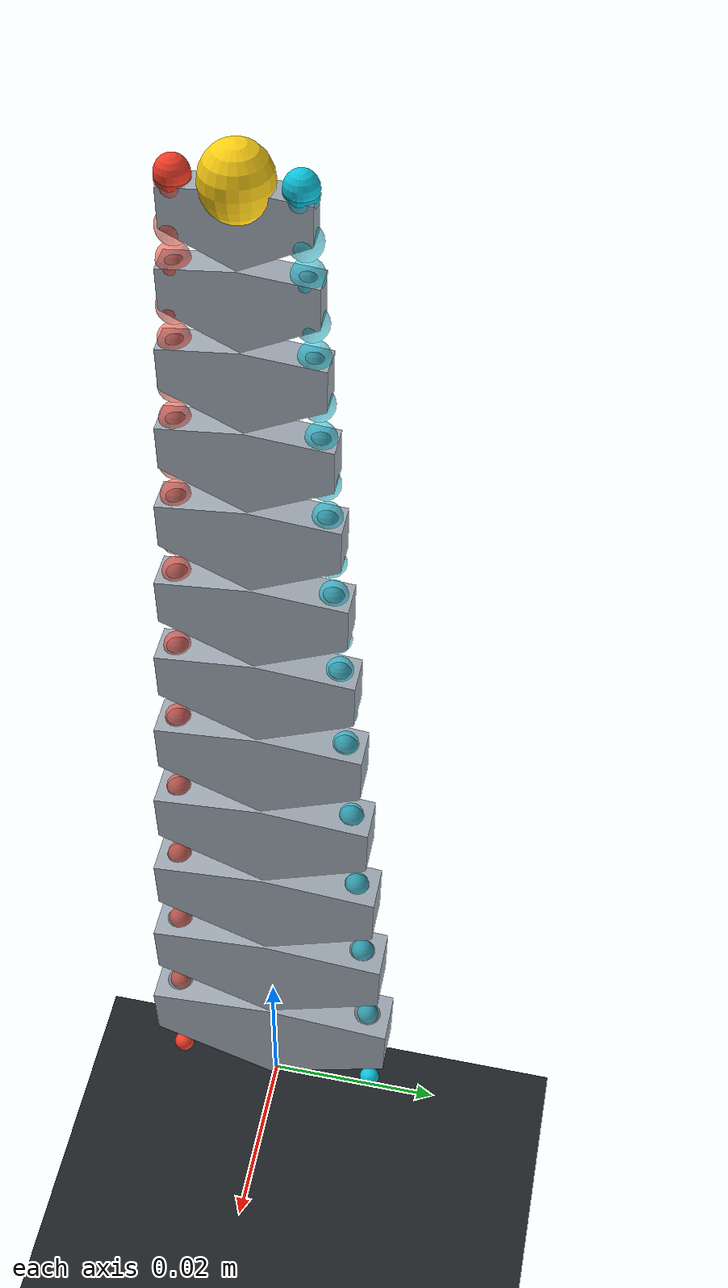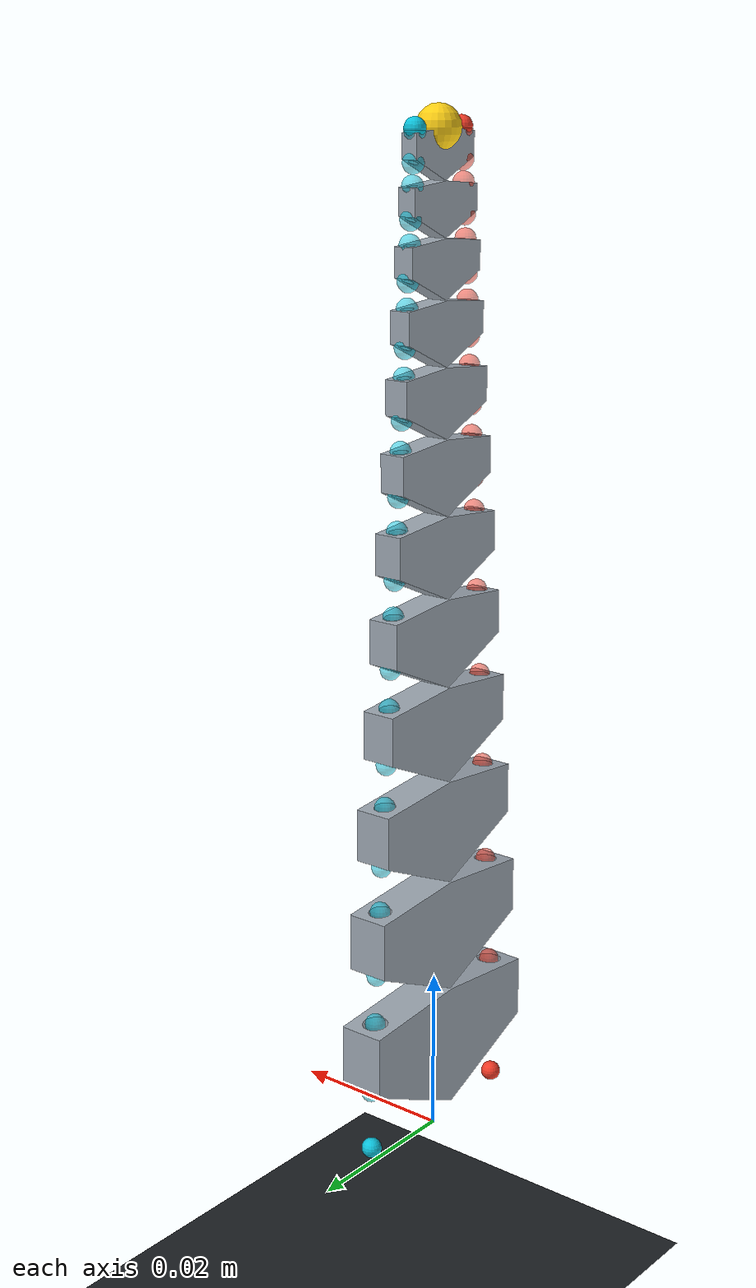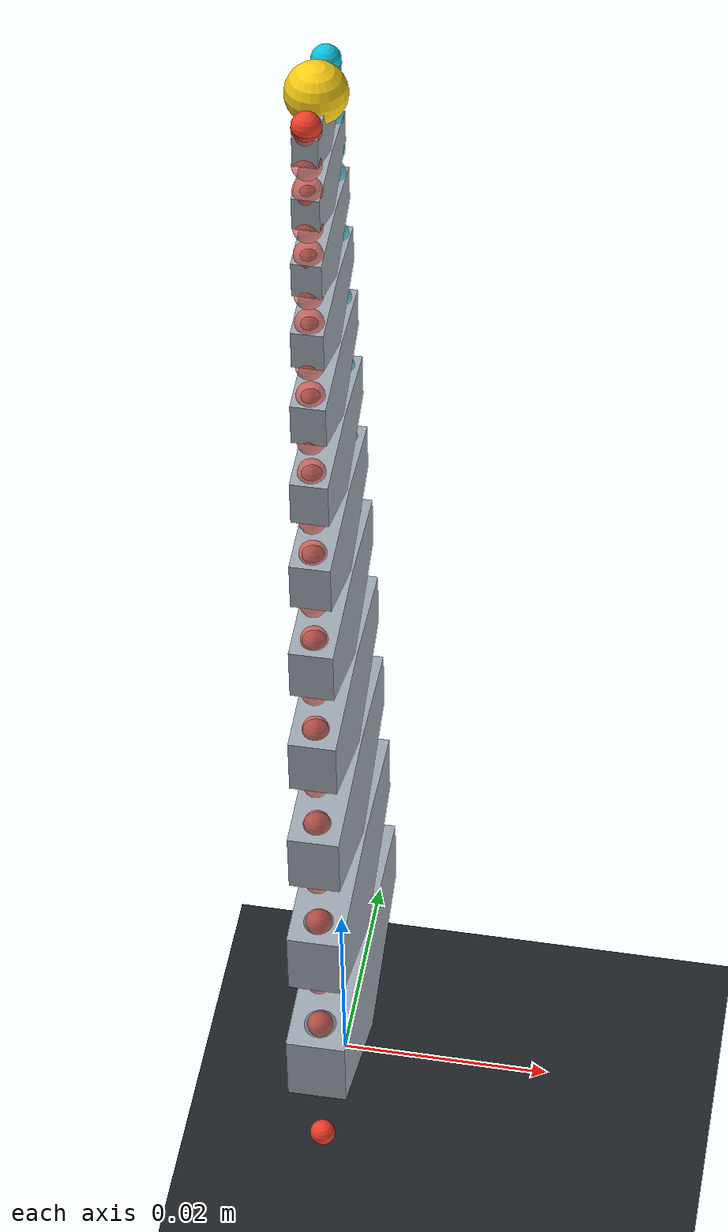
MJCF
<mujoco model="open_spirob_mujocable_mu_0p015">
  <compiler angle="radian" autolimits="true" meshdir="../assets/open_spirob" />
  <size nuser_site="1" />
  <option timestep="0.0002" gravity="0 0 0" integrator="implicitfast" />
  <statistic center="0 0 0.075" extent="0.14" />
  <extension>
    <plugin plugin="mujoco.cable.unilateral">
      <instance name="positive_cable">
        <config key="route_mode" value="surface" />
        <config key="route_tendon" value="positive_seed" />
        <config key="site_role_user_index" value="0" />
        <config key="home_length" value="auto_initial" />
        <config key="stiffness" value="180" />
        <config key="damping" value="0.08" />
        <config key="slack" value="0.0001" />
        <config key="pretension_offset" value="-0.025" />
        <config key="max_tension" value="7" />
        <config key="ctrl_mode" value="target_contraction" />
        <config key="control_timeconstant" value="0.04" />
        <config key="max_contraction_rate" value="0.040" />
        <config key="taut_transition" value="0.00015" />
        <config key="taut_hysteresis" value="0.00005" />
        <config key="guide_friction_mu" value="0.015" />
        <config key="capstan_direction" value="forward" />
        <config key="visual_width" value="2.2" />
        <config key="visual_smoothing_timeconstant" value="0.02" />
      </instance>
      <instance name="negative_cable">
        <config key="route_mode" value="surface" />
        <config key="route_tendon" value="negative_seed" />
        <config key="site_role_user_index" value="0" />
        <config key="home_length" value="auto_initial" />
        <config key="stiffness" value="180" />
        <config key="damping" value="0.08" />
        <config key="slack" value="0.0001" />
        <config key="pretension_offset" value="-0.025" />
        <config key="max_tension" value="7" />
        <config key="ctrl_mode" value="target_contraction" />
        <config key="control_timeconstant" value="0.04" />
        <config key="max_contraction_rate" value="0.040" />
        <config key="taut_transition" value="0.00015" />
        <config key="taut_hysteresis" value="0.00005" />
        <config key="guide_friction_mu" value="0.015" />
        <config key="capstan_direction" value="forward" />
        <config key="visual_width" value="2.2" />
        <config key="visual_smoothing_timeconstant" value="0.02" />
      </instance>
    </plugin>
  </extension>
  <asset>
    <mesh name="unit_1" file="spirob_unit_with_holes.stl" scale="0.001000000 0.001000000 0.001000000" />
    <mesh name="unit_2" file="spirob_unit_with_holes.stl" scale="0.000911774 0.000911774 0.000911774" />
    <mesh name="unit_3" file="spirob_unit_with_holes.stl" scale="0.000831332 0.000831332 0.000831332" />
    <mesh name="unit_4" file="spirob_unit_with_holes.stl" scale="0.000757987 0.000757987 0.000757987" />
    <mesh name="unit_5" file="spirob_unit_with_holes.stl" scale="0.000691113 0.000691113 0.000691113" />
    <mesh name="unit_6" file="spirob_unit_with_holes.stl" scale="0.000630139 0.000630139 0.000630139" />
    <mesh name="unit_7" file="spirob_unit_with_holes.stl" scale="0.000574545 0.000574545 0.000574545" />
    <mesh name="unit_8" file="spirob_unit_with_holes.stl" scale="0.000523855 0.000523855 0.000523855" />
    <mesh name="unit_9" file="spirob_unit_with_holes.stl" scale="0.000477638 0.000477638 0.000477638" />
    <mesh name="unit_10" file="spirob_unit_with_holes.stl" scale="0.000435498 0.000435498 0.000435498" />
    <mesh name="unit_11" file="spirob_unit_with_holes.stl" scale="0.000397076 0.000397076 0.000397076" />
    <mesh name="unit_12" file="spirob_unit_with_holes.stl" scale="0.000362043 0.000362043 0.000362043" />
    <material name="body_material" rgba="0.62 0.66 0.70 1" />
    <texture name="grid" type="2d" builtin="checker" rgb1=".16 .18 .20" rgb2=".08 .09 .10" width="512" height="512" />
    <material name="floor_material" texture="grid" texrepeat="4 4" />
  </asset>
  <visual>
    <headlight ambient="0.25 0.25 0.25" diffuse="0.8 0.8 0.8" />
    <global offwidth="1280" offheight="720" />
  </visual>
  <default>
    <joint type="hinge" axis="1 0 0" limited="true" range="-0.70 0.70" damping="0.0015" stiffness="0.0015" />
    <geom type="mesh" material="body_material" density="350" contype="0" conaffinity="0" />
    <site size="0.0012" />
  </default>
  <worldbody>
    <light pos="-0.25 -0.35 0.45" dir="0.3 0.4 -1" />
    <camera name="overview" pos="0.15 -0.21 0.155" xyaxes="0.81 0.58 0 -0.23 0.32 0.92" />
    <geom name="floor" type="plane" pos="0 0 -0.025" size="0.14 0.14 0.01" material="floor_material" />
    <site name="positive_base_anchor" user="1" pos="0 0.011957987 0.002" rgba="0.05 0.78 0.88 1" />
    <site name="negative_base_anchor" user="1" pos="0 -0.011957987 0.002" rgba="0.96 0.24 0.16 1" />
    <body name="unit_1_body" pos="0 0 0.004">
      <geom mesh="unit_1" name="unit_1_geom" contype="1" conaffinity="1" friction="0.8 0.02 0.005" solref="0.006 1" solimp="0.95 0.995 0.001" />
      <site name="positive_1_1" user="3" pos="0 0.011957987 0.005518307" rgba="0.05 0.78 0.88 0.55" />
      <site name="positive_1_2" user="3" pos="0 0.011214213 0.014142487" rgba="0.05 0.78 0.88 0.55" />
      <site name="negative_1_1" user="3" pos="0 -0.011957987 0.005518307" rgba="0.96 0.24 0.16 0.55" />
      <site name="negative_1_2" user="3" pos="0 -0.011214213 0.014142487" rgba="0.96 0.24 0.16 0.55" />
      <body name="unit_2_body" pos="0 0 0.015168563">
        <joint name="joint_1" />
        <geom mesh="unit_2" name="unit_2_geom" contype="1" conaffinity="1" friction="0.8 0.02 0.005" solref="0.006 1" solimp="0.95 0.995 0.001" />
        <site name="positive_2_1" user="3" pos="0 0.010902985 0.005031450" rgba="0.05 0.78 0.88 0.55" />
        <site name="positive_2_2" user="3" pos="0 0.010224831 0.012894756" rgba="0.05 0.78 0.88 0.55" />
        <site name="negative_2_1" user="3" pos="0 -0.010902985 0.005031450" rgba="0.96 0.24 0.16 0.55" />
        <site name="negative_2_2" user="3" pos="0 -0.010224831 0.012894756" rgba="0.96 0.24 0.16 0.55" />
        <body name="unit_3_body" pos="0 0 0.013830305">
          <joint name="joint_2" />
          <geom mesh="unit_3" name="unit_3_geom" contype="1" conaffinity="1" friction="0.8 0.02 0.005" solref="0.006 1" solimp="0.95 0.995 0.001" />
          <site name="positive_3_1" user="3" pos="0 0.009941061 0.004587547" rgba="0.05 0.78 0.88 0.55" />
          <site name="positive_3_2" user="3" pos="0 0.009322738 0.011757107" rgba="0.05 0.78 0.88 0.55" />
          <site name="negative_3_1" user="3" pos="0 -0.009941061 0.004587547" rgba="0.96 0.24 0.16 0.55" />
          <site name="negative_3_2" user="3" pos="0 -0.009322738 0.011757107" rgba="0.96 0.24 0.16 0.55" />
          <body name="unit_4_body" pos="0 0 0.012610117">
            <joint name="joint_3" />
            <geom mesh="unit_4" name="unit_4_geom" contype="1" conaffinity="1" friction="0.8 0.02 0.005" solref="0.006 1" solimp="0.95 0.995 0.001" />
            <site name="positive_4_1" user="3" pos="0 0.009064004 0.004182807" rgba="0.05 0.78 0.88 0.55" />
            <site name="positive_4_2" user="3" pos="0 0.008500233 0.010719828" rgba="0.05 0.78 0.88 0.55" />
            <site name="negative_4_1" user="3" pos="0 -0.009064004 0.004182807" rgba="0.96 0.24 0.16 0.55" />
            <site name="negative_4_2" user="3" pos="0 -0.008500233 0.010719828" rgba="0.96 0.24 0.16 0.55" />
            <body name="unit_5_body" pos="0 0 0.011497580">
              <joint name="joint_4" />
              <geom mesh="unit_5" name="unit_5_geom" contype="1" conaffinity="1" friction="0.8 0.02 0.005" solref="0.006 1" solimp="0.95 0.995 0.001" />
              <site name="positive_5_1" user="3" pos="0 0.008264325 0.003813776" rgba="0.05 0.78 0.88 0.55" />
              <site name="positive_5_2" user="3" pos="0 0.007750294 0.009774063" rgba="0.05 0.78 0.88 0.55" />
              <site name="negative_5_1" user="3" pos="0 -0.008264325 0.003813776" rgba="0.96 0.24 0.16 0.55" />
              <site name="negative_5_2" user="3" pos="0 -0.007750294 0.009774063" rgba="0.96 0.24 0.16 0.55" />
              <body name="unit_6_body" pos="0 0 0.010483198">
                <joint name="joint_5" />
                <geom mesh="unit_6" name="unit_6_geom" contype="1" conaffinity="1" friction="0.8 0.02 0.005" solref="0.006 1" solimp="0.95 0.995 0.001" />
                <site name="positive_6_1" user="3" pos="0 0.007535199 0.003477303" rgba="0.05 0.78 0.88 0.55" />
                <site name="positive_6_2" user="3" pos="0 0.007066518 0.008911739" rgba="0.05 0.78 0.88 0.55" />
                <site name="negative_6_1" user="3" pos="0 -0.007535199 0.003477303" rgba="0.96 0.24 0.16 0.55" />
                <site name="negative_6_2" user="3" pos="0 -0.007066518 0.008911739" rgba="0.96 0.24 0.16 0.55" />
                <body name="unit_7_body" pos="0 0 0.009558310">
                  <joint name="joint_6" />
                  <geom mesh="unit_7" name="unit_7_geom" contype="1" conaffinity="1" friction="0.8 0.02 0.005" solref="0.006 1" solimp="0.95 0.995 0.001" />
                  <site name="positive_7_1" user="3" pos="0 0.006870401 0.003170515" rgba="0.05 0.78 0.88 0.55" />
                  <site name="positive_7_2" user="3" pos="0 0.006443070 0.008125495" rgba="0.05 0.78 0.88 0.55" />
                  <site name="negative_7_1" user="3" pos="0 -0.006870401 0.003170515" rgba="0.96 0.24 0.16 0.55" />
                  <site name="negative_7_2" user="3" pos="0 -0.006443070 0.008125495" rgba="0.96 0.24 0.16 0.55" />
                  <body name="unit_8_body" pos="0 0 0.008715021">
                    <joint name="joint_7" />
                    <geom mesh="unit_8" name="unit_8_geom" contype="1" conaffinity="1" friction="0.8 0.02 0.005" solref="0.006 1" solimp="0.95 0.995 0.001" />
                    <site name="positive_8_1" user="3" pos="0 0.006264255 0.002890794" rgba="0.05 0.78 0.88 0.55" />
                    <site name="positive_8_2" user="3" pos="0 0.005874625 0.007408617" rgba="0.05 0.78 0.88 0.55" />
                    <site name="negative_8_1" user="3" pos="0 -0.006264255 0.002890794" rgba="0.96 0.24 0.16 0.55" />
                    <site name="negative_8_2" user="3" pos="0 -0.005874625 0.007408617" rgba="0.96 0.24 0.16 0.55" />
                    <body name="unit_9_body" pos="0 0 0.007946132">
                      <joint name="joint_8" />
                      <geom mesh="unit_9" name="unit_9_geom" contype="1" conaffinity="1" friction="0.8 0.02 0.005" solref="0.006 1" solimp="0.95 0.995 0.001" />
                      <site name="positive_9_1" user="3" pos="0 0.005711586 0.002635752" rgba="0.05 0.78 0.88 0.55" />
                      <site name="positive_9_2" user="3" pos="0 0.005356332 0.006754986" rgba="0.05 0.78 0.88 0.55" />
                      <site name="negative_9_1" user="3" pos="0 -0.005711586 0.002635752" rgba="0.96 0.24 0.16 0.55" />
                      <site name="negative_9_2" user="3" pos="0 -0.005356332 0.006754986" rgba="0.96 0.24 0.16 0.55" />
                      <body name="unit_10_body" pos="0 0 0.007245079">
                        <joint name="joint_9" />
                        <geom mesh="unit_10" name="unit_10_geom" contype="1" conaffinity="1" friction="0.8 0.02 0.005" solref="0.006 1" solimp="0.95 0.995 0.001" />
                        <site name="positive_10_1" user="3" pos="0 0.005207678 0.002403211" rgba="0.05 0.78 0.88 0.55" />
                        <site name="positive_10_2" user="3" pos="0 0.004883766 0.006159023" rgba="0.05 0.78 0.88 0.55" />
                        <site name="negative_10_1" user="3" pos="0 -0.005207678 0.002403211" rgba="0.96 0.24 0.16 0.55" />
                        <site name="negative_10_2" user="3" pos="0 -0.004883766 0.006159023" rgba="0.96 0.24 0.16 0.55" />
                        <body name="unit_11_body" pos="0 0 0.006605876">
                          <joint name="joint_10" />
                          <geom mesh="unit_11" name="unit_11_geom" contype="1" conaffinity="1" friction="0.8 0.02 0.005" solref="0.006 1" solimp="0.95 0.995 0.001" />
                          <site name="positive_11_1" user="3" pos="0 0.004748226 0.002191186" rgba="0.05 0.78 0.88 0.55" />
                          <site name="positive_11_2" user="3" pos="0 0.004452892 0.005615639" rgba="0.05 0.78 0.88 0.55" />
                          <site name="negative_11_1" user="3" pos="0 -0.004748226 0.002191186" rgba="0.96 0.24 0.16 0.55" />
                          <site name="negative_11_2" user="3" pos="0 -0.004452892 0.005615639" rgba="0.96 0.24 0.16 0.55" />
                          <body name="unit_12_body" pos="0 0 0.006023068">
                            <joint name="joint_11" />
                            <geom mesh="unit_12" name="unit_12_geom" contype="1" conaffinity="1" friction="0.8 0.02 0.005" solref="0.006 1" solimp="0.95 0.995 0.001" />
                            <site name="positive_12_1" user="3" pos="0 0.004329311 0.001997867" rgba="0.05 0.78 0.88 0.55" />
                            <site name="positive_12_2" user="3" pos="0 0.004060032 0.005120195" rgba="0.05 0.78 0.88 0.55" />
                            <site name="negative_12_1" user="3" pos="0 -0.004329311 0.001997867" rgba="0.96 0.24 0.16 0.55" />
                            <site name="negative_12_2" user="3" pos="0 -0.004060032 0.005120195" rgba="0.96 0.24 0.16 0.55" />
                            <site name="positive_tip" user="1" pos="0 0.004060032 0.005491679" rgba="0.05 0.78 0.88 1" />
                            <site name="negative_tip" user="1" pos="0 -0.004060032 0.005491679" rgba="0.96 0.24 0.16 1" />
                            <site name="tip_marker" pos="0 0 0.005491679" size="0.0025" rgba="1 0.82 0.08 1" />
                          </body>
                        </body>
                      </body>
                    </body>
                  </body>
                </body>
              </body>
            </body>
          </body>
        </body>
      </body>
    </body>
  </worldbody>
  <contact>
    <pair geom1="unit_1_geom" geom2="unit_2_geom" condim="3" friction="0.8 0.02 0.005 0.0001 0.0001" solref="0.006 1" solimp="0.95 0.995 0.001" />
    <pair geom1="unit_2_geom" geom2="unit_3_geom" condim="3" friction="0.8 0.02 0.005 0.0001 0.0001" solref="0.006 1" solimp="0.95 0.995 0.001" />
    <pair geom1="unit_3_geom" geom2="unit_4_geom" condim="3" friction="0.8 0.02 0.005 0.0001 0.0001" solref="0.006 1" solimp="0.95 0.995 0.001" />
    <pair geom1="unit_4_geom" geom2="unit_5_geom" condim="3" friction="0.8 0.02 0.005 0.0001 0.0001" solref="0.006 1" solimp="0.95 0.995 0.001" />
    <pair geom1="unit_5_geom" geom2="unit_6_geom" condim="3" friction="0.8 0.02 0.005 0.0001 0.0001" solref="0.006 1" solimp="0.95 0.995 0.001" />
    <pair geom1="unit_6_geom" geom2="unit_7_geom" condim="3" friction="0.8 0.02 0.005 0.0001 0.0001" solref="0.006 1" solimp="0.95 0.995 0.001" />
    <pair geom1="unit_7_geom" geom2="unit_8_geom" condim="3" friction="0.8 0.02 0.005 0.0001 0.0001" solref="0.006 1" solimp="0.95 0.995 0.001" />
    <pair geom1="unit_8_geom" geom2="unit_9_geom" condim="3" friction="0.8 0.02 0.005 0.0001 0.0001" solref="0.006 1" solimp="0.95 0.995 0.001" />
    <pair geom1="unit_9_geom" geom2="unit_10_geom" condim="3" friction="0.8 0.02 0.005 0.0001 0.0001" solref="0.006 1" solimp="0.95 0.995 0.001" />
    <pair geom1="unit_10_geom" geom2="unit_11_geom" condim="3" friction="0.8 0.02 0.005 0.0001 0.0001" solref="0.006 1" solimp="0.95 0.995 0.001" />
    <pair geom1="unit_11_geom" geom2="unit_12_geom" condim="3" friction="0.8 0.02 0.005 0.0001 0.0001" solref="0.006 1" solimp="0.95 0.995 0.001" />
  </contact>
  <tendon>
    <spatial name="positive_seed" width="0.000000001" rgba="0.05 0.78 0.88 1">
      <site site="positive_base_anchor" />
      <site site="positive_1_1" />
      <site site="positive_1_2" />
      <site site="positive_2_1" />
      <site site="positive_2_2" />
      <site site="positive_3_1" />
      <site site="positive_3_2" />
      <site site="positive_4_1" />
      <site site="positive_4_2" />
      <site site="positive_5_1" />
      <site site="positive_5_2" />
      <site site="positive_6_1" />
      <site site="positive_6_2" />
      <site site="positive_7_1" />
      <site site="positive_7_2" />
      <site site="positive_8_1" />
      <site site="positive_8_2" />
      <site site="positive_9_1" />
      <site site="positive_9_2" />
      <site site="positive_10_1" />
      <site site="positive_10_2" />
      <site site="positive_11_1" />
      <site site="positive_11_2" />
      <site site="positive_12_1" />
      <site site="positive_12_2" />
      <site site="positive_tip" />
    </spatial>
    <spatial name="negative_seed" width="0.000000001" rgba="0.96 0.24 0.16 1">
      <site site="negative_base_anchor" />
      <site site="negative_1_1" />
      <site site="negative_1_2" />
      <site site="negative_2_1" />
      <site site="negative_2_2" />
      <site site="negative_3_1" />
      <site site="negative_3_2" />
      <site site="negative_4_1" />
      <site site="negative_4_2" />
      <site site="negative_5_1" />
      <site site="negative_5_2" />
      <site site="negative_6_1" />
      <site site="negative_6_2" />
      <site site="negative_7_1" />
      <site site="negative_7_2" />
      <site site="negative_8_1" />
      <site site="negative_8_2" />
      <site site="negative_9_1" />
      <site site="negative_9_2" />
      <site site="negative_10_1" />
      <site site="negative_10_2" />
      <site site="negative_11_1" />
      <site site="negative_11_2" />
      <site site="negative_12_1" />
      <site site="negative_12_2" />
      <site site="negative_tip" />
    </spatial>
  </tendon>
  <actuator>
    <plugin name="positive_command" tendon="positive_seed" gear="0" instance="positive_cable" ctrllimited="true" ctrlrange="0 0.05" />
    <plugin name="negative_command" tendon="negative_seed" gear="0" instance="negative_cable" ctrllimited="true" ctrlrange="0 0.05" />
  </actuator>
  <sensor>
    <plugin name="positive_state" instance="positive_cable" />
    <plugin name="negative_state" instance="negative_cable" />
    <framepos name="tip_position" objtype="site" objname="tip_marker" />
    <framequat name="tip_orientation" objtype="site" objname="tip_marker" />
  </sensor>
  <keyframe>
    <key name="home" ctrl="0 0" />
  </keyframe>
</mujoco>
